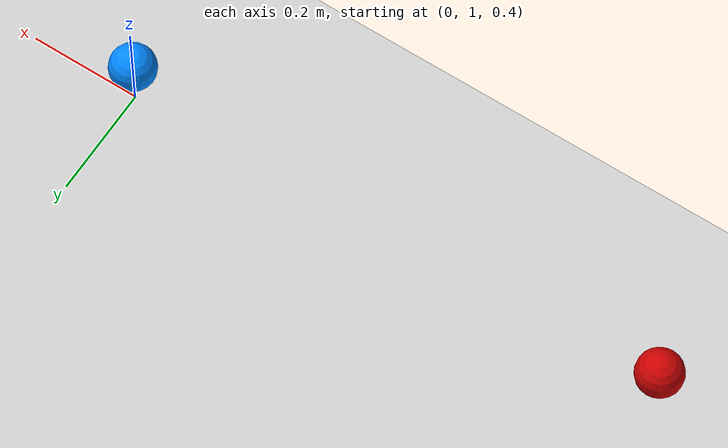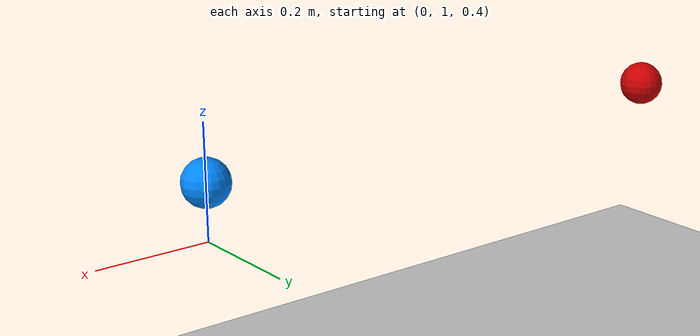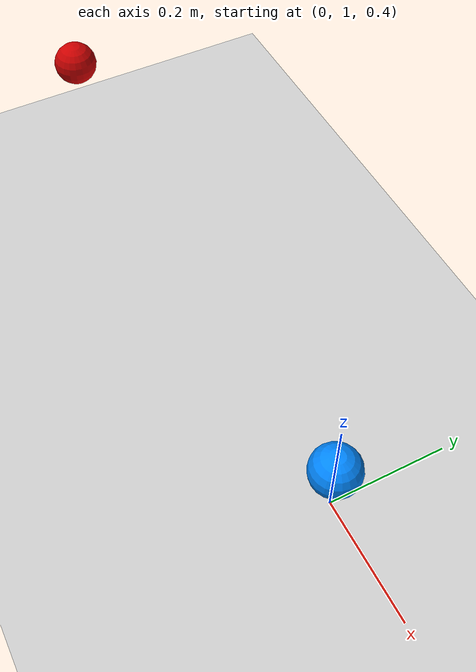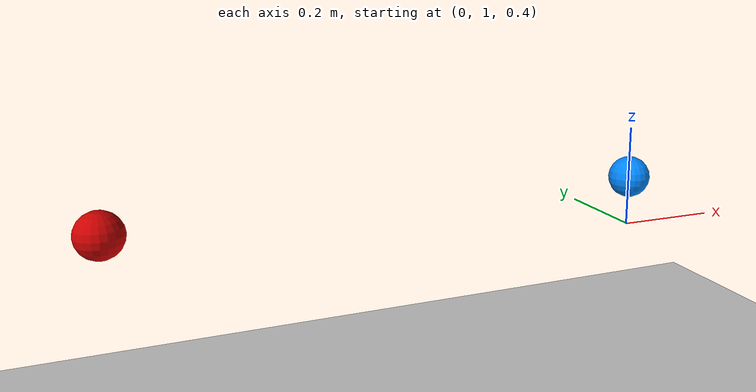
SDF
<?xml version="1.0"?>
<sdf version="1.6">
  <world name="block_test">
    <plugin
      filename="gz-sim-physics-system"
      name="gz::sim::systems::Physics">
    </plugin>

    <plugin
      filename="gz-sim-user-commands-system"
      name="gz::sim::systems::UserCommands">
    </plugin>

    <plugin
      filename="gz-sim-scene-broadcaster-system"
      name="gz::sim::systems::SceneBroadcaster">
    </plugin>

    <plugin
      filename="gz-sim-sensors-system"
      name="gz::sim::systems::Sensors">
      <render_engine>ogre2</render_engine>
    </plugin>

    <plugin
      filename="gz-sim-imu-system"
      name="gz::sim::systems::Imu">
    </plugin>

    <include>
      <uri>https://fuel.gazebosim.org/1.0/OpenRobotics/models/Ground Plane</uri>
    </include>

    <include>
      <uri>https://fuel.gazebosim.org/1.0/OpenRobotics/models/Sun</uri>
    </include>

    <scene>
      <shadows>false</shadows>
    </scene>

    <gui fullscreen='0'>
      <camera name='user_camera'>
        <pose frame=''>0.319654 -0.235002 9.29441 0 1.5138 0.009599</pose>
        <view_controller>orbit</view_controller>
        <projection_type>perspective</projection_type>
      </camera>
    </gui>

    <physics type="ode">
      <real_time_update_rate>100.0</real_time_update_rate> <!--used to be 1000.0-->
      <max_step_size>0.01</max_step_size> <!--this used to be 0.001-->
      <max_contacts>100</max_contacts> <!-- used to hopefully reduce lag -->
      <ode>
        <solver>
          <type>quick</type>
          <iters>150</iters>
          <precon_iters>0</precon_iters>
          <sor>1.400000</sor>
          <use_dynamic_moi_rescaling>1</use_dynamic_moi_rescaling>
        </solver>
        <constraints>
          <cfm>0.00001</cfm>
          <erp>0.2</erp>
          <contact_max_correcting_vel>2000.000000</contact_max_correcting_vel>
          <contact_surface_layer>0.01000</contact_surface_layer>
        </constraints>
      </ode>
    </physics>

    <include name="sphere_r">
        <uri>model://red-sphere</uri>
        <pose>-1 1 0.5 0 0 0</pose>
    </include>

    <include name="sphere_b">
        <uri>model://blue-sphere</uri>
        <pose>0 1 0.5 0 0 0</pose>
    </include>

  </world>
</sdf>

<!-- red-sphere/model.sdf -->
<sdf version="1.6">
  <model name="red-sphere">

    <!--general object params -->
    <static>false</static>

    <link name="link">

      <!--pose of link relative to model-->
      <pose>0 0 0 0 0 0</pose>

			<velocity_decay>
				<linear>0.5</linear>
			</velocity_decay>

      <visual name="visual">
          <geometry>
              <sphere>
                  <radius>0.041</radius> <!--should be in cm-->
              </sphere>
          </geometry>
          <material>
              <ambient>0.8 0.0 0.0 1.0</ambient>
              <diffuse>0.8 0.0 0.0 1.0</diffuse>
              <specular>0.1 0.1 0.1 1.0</specular>
              <emissive>0 0 0 1</emissive>
          </material>
      </visual>

      <collision name="collision">
			<geometry>
						<sphere>
							<radius>0.041</radius> <!--should be in cm-->
						</sphere>
					</geometry>
					<surface>
						<friction>
							<ode>
								<mu>0.2</mu>
								<mu2>0.2</mu2>
							</ode>
						</friction>
					</surface>
      </collision>

      <inertial>
        <mass>0.04</mass> <!--units are in kg. 1g = 0.001kg-->
        <inertia>
          <ixx>0.0002</ixx>
          <iyy>0.0002</iyy>
          <izz>0.0002</izz>
        </inertia>
      </inertial>

    </link>

    <plugin filename="gz-sim-pose-publisher-system" name="gz::sim::systems::PosePublisher">
      <publish_link_pose>false</publish_link_pose>
      <publish_visual_pose>false</publish_visual_pose>
      <publish_collision_pose>false</publish_collision_pose>
      <publish_sensor_pose>false</publish_sensor_pose>
      <publish_model_pose>true</publish_model_pose>
      <publish_nested_model_pose>true</publish_nested_model_pose>
      <use_pose_vector_msg>false</use_pose_vector_msg>
      <update_frequency>20</update_frequency> <!-- Publish at 20 Hz -->
      <static_publisher>false</static_publisher>
      <static_update_frequency>1</static_update_frequency>
    </plugin>

    <plugin filename="librollingFriction.so" name="rolling_friction::RollingFrictionPlugin">
      <link_name>link</link_name>
      <coefficient>0.01</coefficient>
    </plugin>

  </model>
</sdf>

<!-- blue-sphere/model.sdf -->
<sdf version="1.6">
  <model name="blue-sphere">

    <!--general object params -->
    <static>false</static>

    <link name="link">

      <!--pose of link relative to model-->
      <pose>0 0 0 0 0 0</pose>

        <velocity_decay>
            <linear>0.5</linear>
        </velocity_decay>

      <visual name="visual">
          <geometry>
              <sphere>
                  <radius>0.041</radius> <!--should be in cm-->
              </sphere>
          </geometry>
          <material>
              <ambient>0, 0.529, 1 1.0</ambient>
              <diffuse>0, 0.529, 1 1.0</diffuse>
              <specular>0.1 0.1 0.1 1.0</specular>
              <emissive>0 0 0 1</emissive>
          </material>
      </visual>

      <collision name="collision">
          <geometry>
              <sphere>
                  <radius>0.041</radius> <!--should be in cm-->
              </sphere>
          </geometry>
          <surface>
            <friction>
                <ode>
                    <mu>0.2</mu>
                    <mu2>0.2</mu2>
                </ode>
                </friction>
            </surface>
      </collision>

      <inertial>
        <mass>0.04</mass> <!--units are in kg. 1g = 0.001kg-->
        <inertia>
          <ixx>0.0002</ixx>
          <iyy>0.0002</iyy>
          <izz>0.0002</izz>
        </inertia>
      </inertial>

    </link>

    <plugin filename="gz-sim-pose-publisher-system" name="gz::sim::systems::PosePublisher">
      <publish_link_pose>false</publish_link_pose>
      <publish_visual_pose>false</publish_visual_pose>
      <publish_collision_pose>false</publish_collision_pose>
      <publish_sensor_pose>false</publish_sensor_pose>
      <publish_model_pose>true</publish_model_pose>
      <publish_nested_model_pose>true</publish_nested_model_pose>
      <use_pose_vector_msg>false</use_pose_vector_msg>
      <update_frequency>20</update_frequency> <!-- Publish at 20 Hz -->
      <static_publisher>false</static_publisher>
      <static_update_frequency>1</static_update_frequency>
    </plugin>
  </model>
</sdf>
